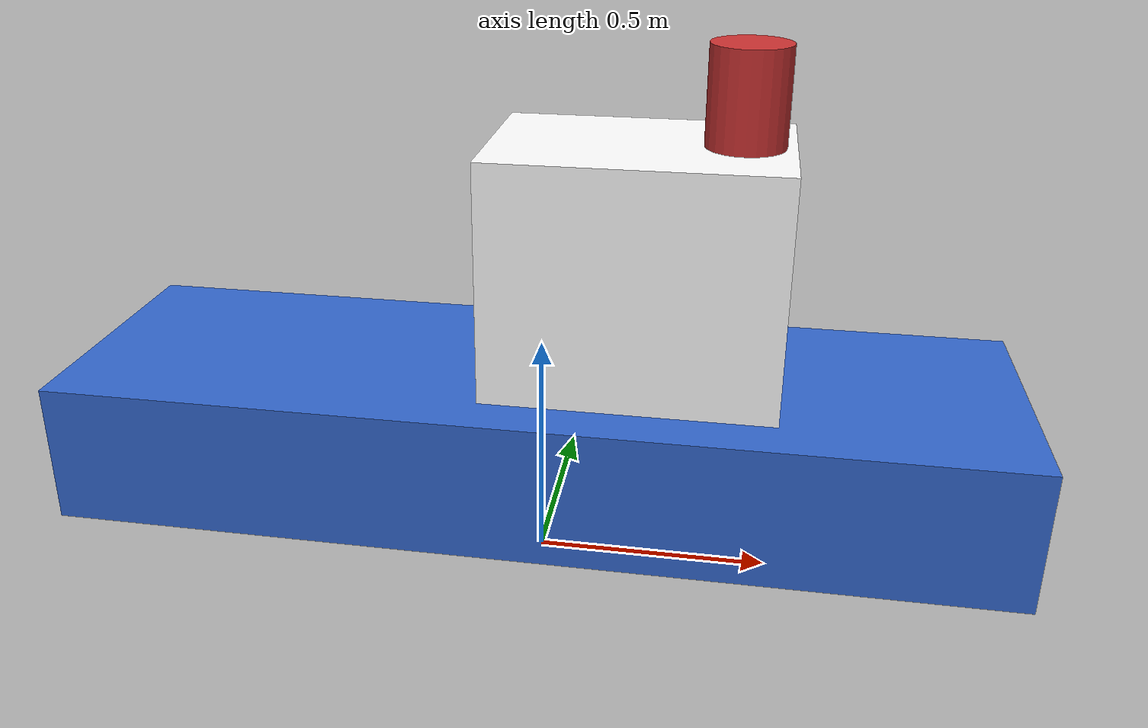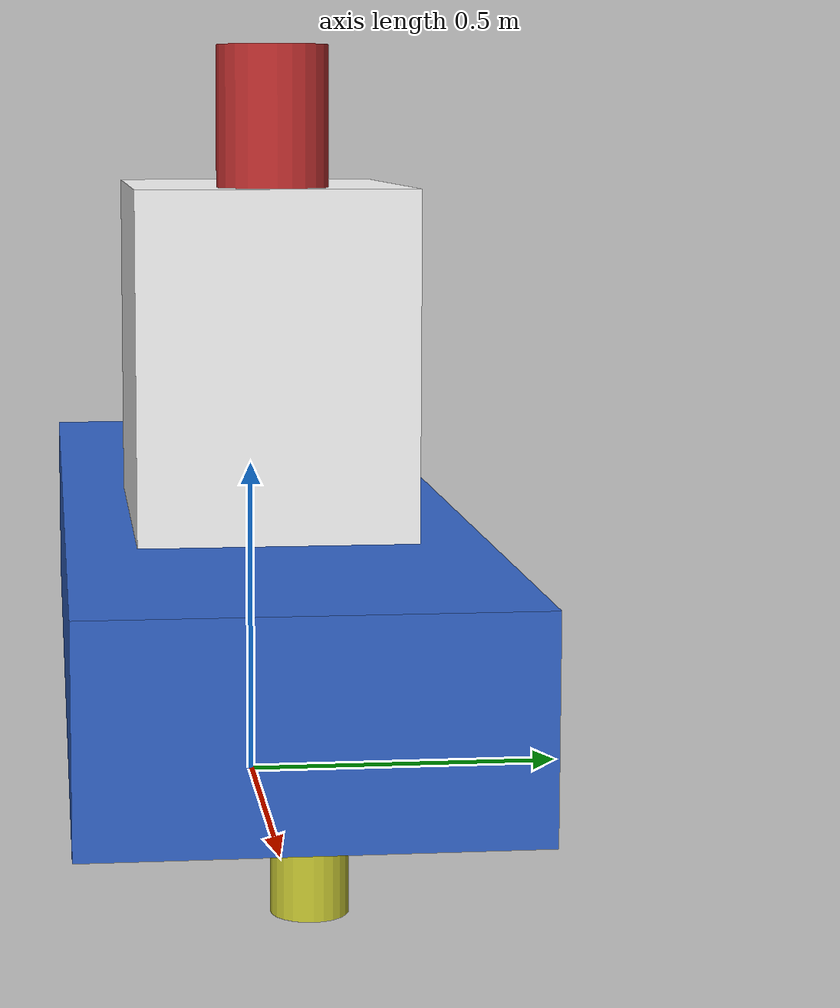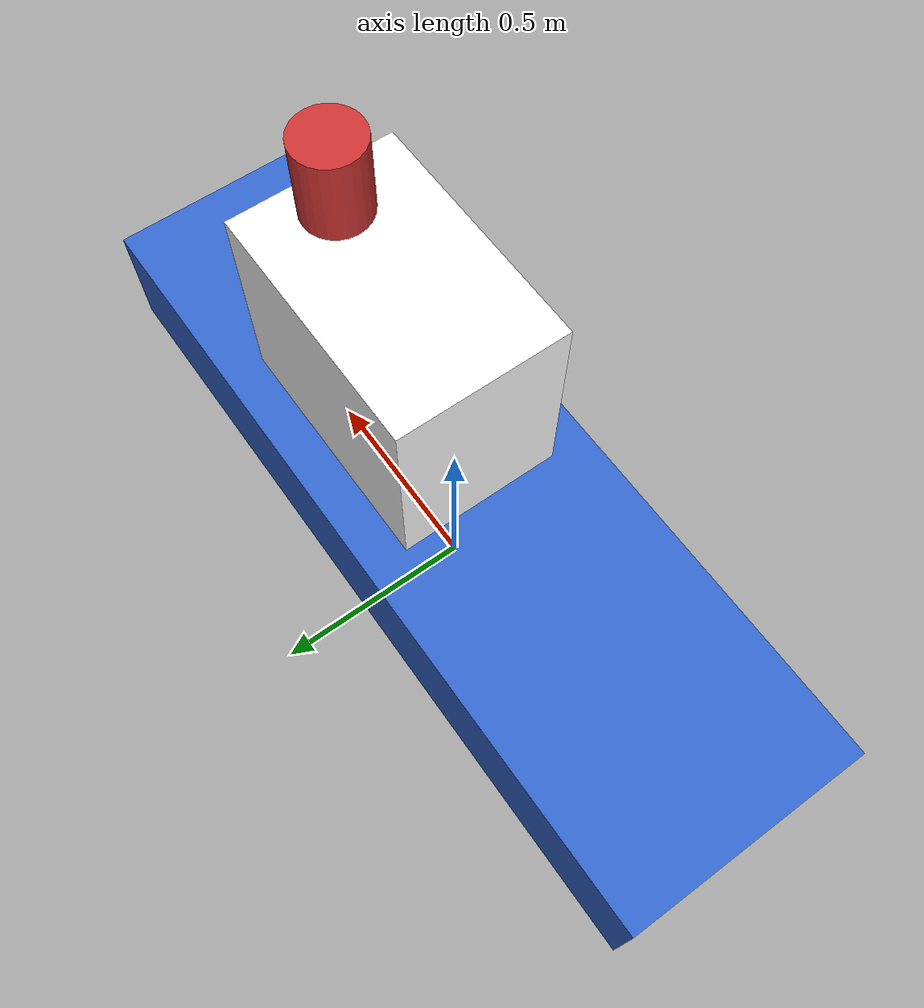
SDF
<?xml version="1.0"?>
<sdf version="1.6">
  <model name="kapal">
    <static>true</static>
    <link name="body">
      <inertial>
        <mass>100.0</mass>
        <inertia>
          <ixx>10.0</ixx>
          <iyy>20.0</iyy>
          <izz>15.0</izz>
          <ixy>0.0</ixy>
          <ixz>0.0</ixz>
          <iyz>0.0</iyz>
        </inertia>
      </inertial>
      <collision name="hull">
        <pose>0 0 0.3 0 0 0</pose>
        <geometry>
          <box>
            <size>2.0 0.6 0.3</size>
          </box>
        </geometry>
      </collision>
      <collision name="cabin">
        <pose>0.2 0 0.7 0 0 0</pose>
        <geometry>
          <box>
            <size>0.6 0.4 0.5</size>
          </box>
        </geometry>
      </collision>
      <visual name="hull_visual">
        <pose>0 0 0.3 0 0 0</pose>
        <geometry>
          <box>
            <size>2.0 0.6 0.3</size>
          </box>
        </geometry>
        <material>
          <ambient>0.2 0.4 0.8 1.0</ambient>
          <diffuse>0.2 0.4 0.8 1.0</diffuse>
          <specular>0.1 0.1 0.1 1.0</specular>
        </material>
      </visual>
      <visual name="cabin_visual">
        <pose>0.2 0 0.7 0 0 0</pose>
        <geometry>
          <box>
            <size>0.6 0.4 0.5</size>
          </box>
        </geometry>
        <material>
          <ambient>1.0 1.0 1.0 1.0</ambient>
          <diffuse>1.0 1.0 1.0 1.0</diffuse>
          <specular>0.1 0.1 0.1 1.0</specular>
        </material>
      </visual>
      <visual name="funnel_visual">
        <pose>0.4 0 1.0 0 0 0</pose>
        <geometry>
          <cylinder>
            <radius>0.08</radius>
            <length>0.3</length>
          </cylinder>
        </geometry>
        <material>
          <ambient>0.8 0.2 0.2 1.0</ambient>
          <diffuse>0.8 0.2 0.2 1.0</diffuse>
        </material>
      </visual>
      <visual name="bow_visual">
        <pose>0.9 0 0.15 0 0 0</pose>
        <geometry>
          <cylinder>
            <radius>0.05</radius>
            <length>0.2</length>
          </cylinder>
        </geometry>
        <material>
          <ambient>0.8 0.8 0.2 1.0</ambient>
          <diffuse>0.8 0.8 0.2 1.0</diffuse>
        </material>
      </visual>
    </link>
  </model>
</sdf>
